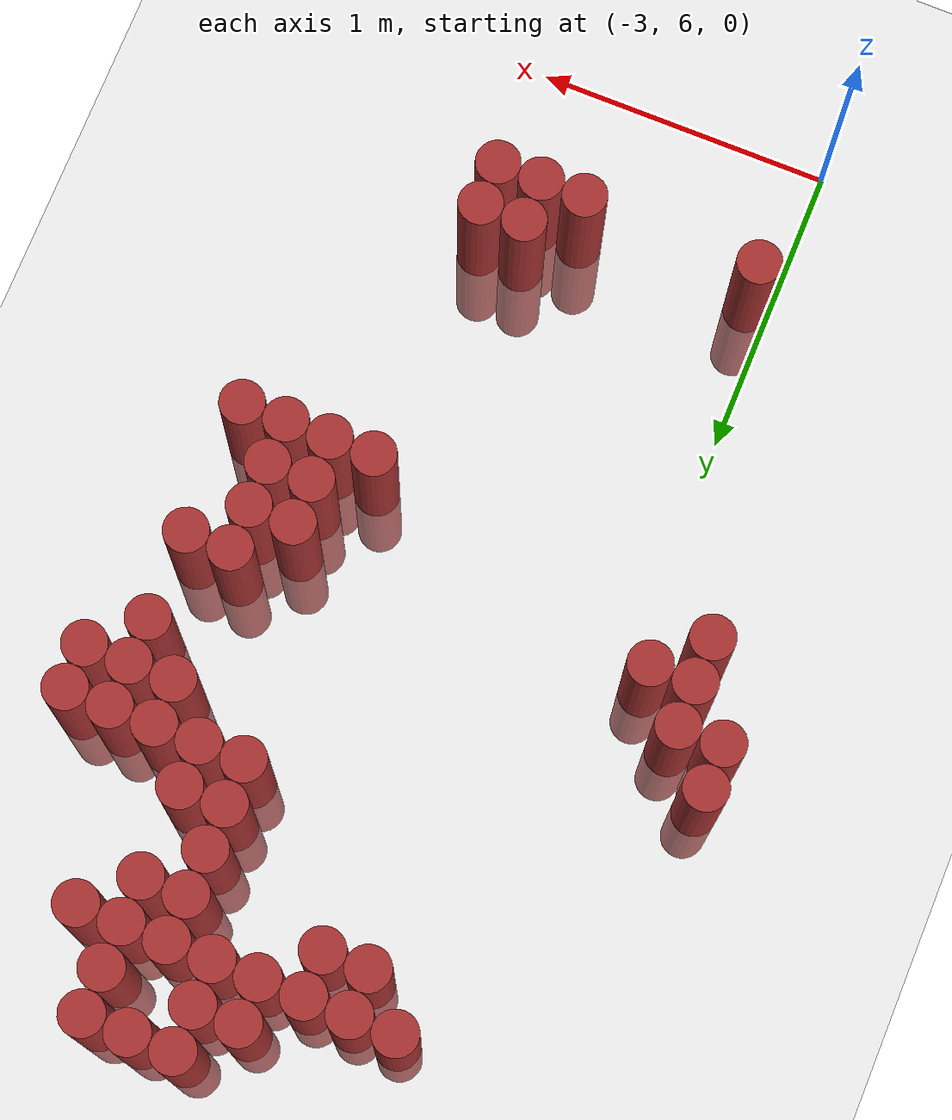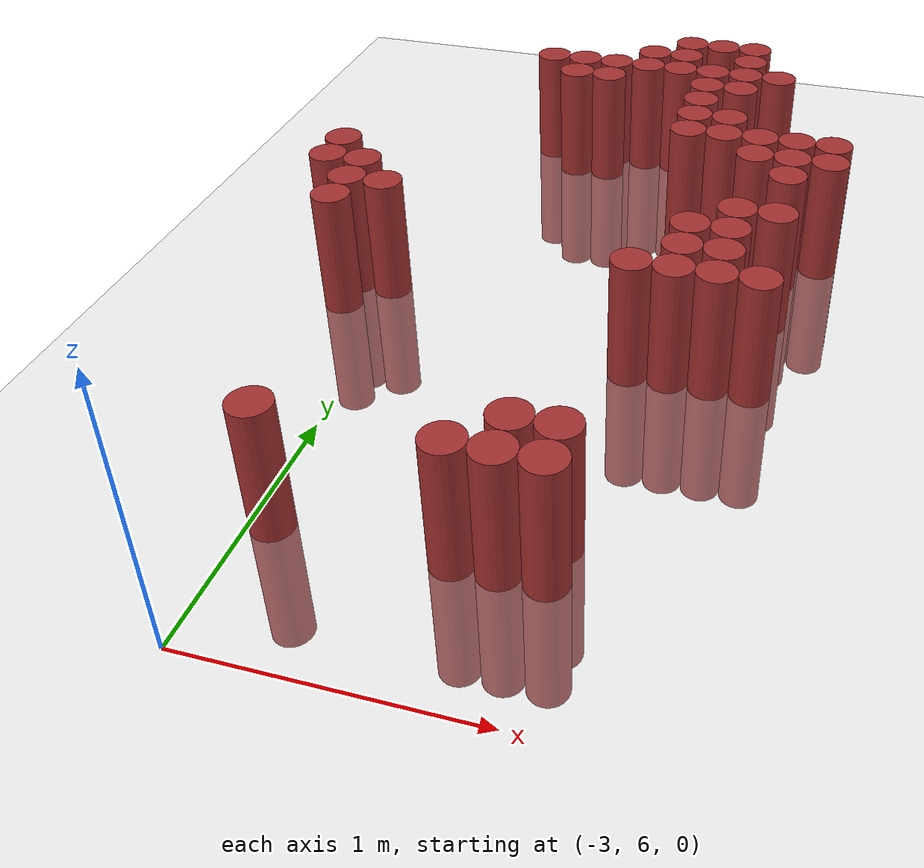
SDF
<sdf version="1.6">
 <world name="default">
  <model name="ground_plane">
   <static>1</static>
   <link name="link">
    <collision name="collision">
     <geometry><plane><normal>0 0 1</normal><size>100 100</size></plane></geometry>
     <surface><friction><ode><mu>100</mu><mu2>50</mu2></ode></friction></surface>
    </collision>
    <visual name="visual">
     <cast_shadows>0</cast_shadows>
     <geometry><plane><normal>0 0 1</normal><size>100 100</size></plane></geometry>
     <material>
      <script><uri>file://media/materials/scripts/gazebo.material</uri><name>Gazebo/Grey</name></script>
     </material>
    </visual>
   </link>
  </model>
  <model name="unit_cylinder_165">
   <static>1</static>
   <pose>-3.375000 8.025000 0.000000 0.000000 0.000000 0.000000</pose>
   <link name="link">
    <inertial>
     <mass>1</mass>
     <inertia><ixx>0.145833</ixx><ixy>0</ixy><ixz>0</ixz><iyy>0.145833</iyy><iyz>0</iyz><izz>0.125</izz></inertia>
    </inertial>
    <collision name="collision">
     <geometry><cylinder><radius>0.075000</radius><length>1</length></cylinder></geometry>
    </collision>
    <visual name="visual">
     <geometry><cylinder><radius>0.075000</radius><length>1</length></cylinder></geometry>
     <material>
      <ambient>0.648000 0.192000 0.192000 1</ambient>
      <diffuse>0.648000 0.192000 0.192000 1</diffuse>
     </material>
     <material>
      <script><name>Gazebo/Grey</name><uri>file://media/materials/scripts/gazebo.material</uri></script>
     </material>
    </visual>
   </link>
  </model>
  <model name="unit_cylinder_166">
   <static>1</static>
   <pose>-3.375000 8.175000 0.000000 0.000000 0.000000 0.000000</pose>
   <link name="link">
    <inertial>
     <mass>1</mass>
     <inertia><ixx>0.145833</ixx><ixy>0</ixy><ixz>0</ixz><iyy>0.145833</iyy><iyz>0</iyz><izz>0.125</izz></inertia>
    </inertial>
    <collision name="collision">
     <geometry><cylinder><radius>0.075000</radius><length>1</length></cylinder></geometry>
    </collision>
    <visual name="visual">
     <geometry><cylinder><radius>0.075000</radius><length>1</length></cylinder></geometry>
     <material>
      <ambient>0.648000 0.192000 0.192000 1</ambient>
      <diffuse>0.648000 0.192000 0.192000 1</diffuse>
     </material>
     <material>
      <script><name>Gazebo/Grey</name><uri>file://media/materials/scripts/gazebo.material</uri></script>
     </material>
    </visual>
   </link>
  </model>
  <model name="unit_cylinder_168">
   <static>1</static>
   <pose>-3.225000 7.725000 0.000000 0.000000 0.000000 0.000000</pose>
   <link name="link">
    <inertial>
     <mass>1</mass>
     <inertia><ixx>0.145833</ixx><ixy>0</ixy><ixz>0</ixz><iyy>0.145833</iyy><iyz>0</iyz><izz>0.125</izz></inertia>
    </inertial>
    <collision name="collision">
     <geometry><cylinder><radius>0.075000</radius><length>1</length></cylinder></geometry>
    </collision>
    <visual name="visual">
     <geometry><cylinder><radius>0.075000</radius><length>1</length></cylinder></geometry>
     <material>
      <ambient>0.648000 0.192000 0.192000 1</ambient>
      <diffuse>0.648000 0.192000 0.192000 1</diffuse>
     </material>
     <material>
      <script><name>Gazebo/Grey</name><uri>file://media/materials/scripts/gazebo.material</uri></script>
     </material>
    </visual>
   </link>
  </model>
  <model name="unit_cylinder_169">
   <static>1</static>
   <pose>-3.225000 7.875000 0.000000 0.000000 0.000000 0.000000</pose>
   <link name="link">
    <inertial>
     <mass>1</mass>
     <inertia><ixx>0.145833</ixx><ixy>0</ixy><ixz>0</ixz><iyy>0.145833</iyy><iyz>0</iyz><izz>0.125</izz></inertia>
    </inertial>
    <collision name="collision">
     <geometry><cylinder><radius>0.075000</radius><length>1</length></cylinder></geometry>
    </collision>
    <visual name="visual">
     <geometry><cylinder><radius>0.075000</radius><length>1</length></cylinder></geometry>
     <material>
      <ambient>0.648000 0.192000 0.192000 1</ambient>
      <diffuse>0.648000 0.192000 0.192000 1</diffuse>
     </material>
     <material>
      <script><name>Gazebo/Grey</name><uri>file://media/materials/scripts/gazebo.material</uri></script>
     </material>
    </visual>
   </link>
  </model>
  <model name="unit_cylinder_170">
   <static>1</static>
   <pose>-3.225000 8.025000 0.000000 0.000000 0.000000 0.000000</pose>
   <link name="link">
    <inertial>
     <mass>1</mass>
     <inertia><ixx>0.145833</ixx><ixy>0</ixy><ixz>0</ixz><iyy>0.145833</iyy><iyz>0</iyz><izz>0.125</izz></inertia>
    </inertial>
    <collision name="collision">
     <geometry><cylinder><radius>0.075000</radius><length>1</length></cylinder></geometry>
    </collision>
    <visual name="visual">
     <geometry><cylinder><radius>0.075000</radius><length>1</length></cylinder></geometry>
     <material>
      <ambient>0.648000 0.192000 0.192000 1</ambient>
      <diffuse>0.648000 0.192000 0.192000 1</diffuse>
     </material>
     <material>
      <script><name>Gazebo/Grey</name><uri>file://media/materials/scripts/gazebo.material</uri></script>
     </material>
    </visual>
   </link>
  </model>
  <model name="unit_cylinder_173">
   <static>1</static>
   <pose>-3.075000 7.875000 0.000000 0.000000 0.000000 0.000000</pose>
   <link name="link">
    <inertial>
     <mass>1</mass>
     <inertia><ixx>0.145833</ixx><ixy>0</ixy><ixz>0</ixz><iyy>0.145833</iyy><iyz>0</iyz><izz>0.125</izz></inertia>
    </inertial>
    <collision name="collision">
     <geometry><cylinder><radius>0.075000</radius><length>1</length></cylinder></geometry>
    </collision>
    <visual name="visual">
     <geometry><cylinder><radius>0.075000</radius><length>1</length></cylinder></geometry>
     <material>
      <ambient>0.648000 0.192000 0.192000 1</ambient>
      <diffuse>0.648000 0.192000 0.192000 1</diffuse>
     </material>
     <material>
      <script><name>Gazebo/Grey</name><uri>file://media/materials/scripts/gazebo.material</uri></script>
     </material>
    </visual>
   </link>
  </model>
  <model name="unit_cylinder_176">
   <static>1</static>
   <pose>-2.925000 6.525000 0.000000 0.000000 0.000000 0.000000</pose>
   <link name="link">
    <inertial>
     <mass>1</mass>
     <inertia><ixx>0.145833</ixx><ixy>0</ixy><ixz>0</ixz><iyy>0.145833</iyy><iyz>0</iyz><izz>0.125</izz></inertia>
    </inertial>
    <collision name="collision">
     <geometry><cylinder><radius>0.075000</radius><length>1</length></cylinder></geometry>
    </collision>
    <visual name="visual">
     <geometry><cylinder><radius>0.075000</radius><length>1</length></cylinder></geometry>
     <material>
      <ambient>0.648000 0.192000 0.192000 1</ambient>
      <diffuse>0.648000 0.192000 0.192000 1</diffuse>
     </material>
     <material>
      <script><name>Gazebo/Grey</name><uri>file://media/materials/scripts/gazebo.material</uri></script>
     </material>
    </visual>
   </link>
  </model>
  <model name="unit_cylinder_180">
   <static>1</static>
   <pose>-2.775000 9.225000 0.000000 0.000000 0.000000 0.000000</pose>
   <link name="link">
    <inertial>
     <mass>1</mass>
     <inertia><ixx>0.145833</ixx><ixy>0</ixy><ixz>0</ixz><iyy>0.145833</iyy><iyz>0</iyz><izz>0.125</izz></inertia>
    </inertial>
    <collision name="collision">
     <geometry><cylinder><radius>0.075000</radius><length>1</length></cylinder></geometry>
    </collision>
    <visual name="visual">
     <geometry><cylinder><radius>0.075000</radius><length>1</length></cylinder></geometry>
     <material>
      <ambient>0.648000 0.192000 0.192000 1</ambient>
      <diffuse>0.648000 0.192000 0.192000 1</diffuse>
     </material>
     <material>
      <script><name>Gazebo/Grey</name><uri>file://media/materials/scripts/gazebo.material</uri></script>
     </material>
    </visual>
   </link>
  </model>
  <model name="unit_cylinder_183">
   <static>1</static>
   <pose>-2.625000 9.075000 0.000000 0.000000 0.000000 0.000000</pose>
   <link name="link">
    <inertial>
     <mass>1</mass>
     <inertia><ixx>0.145833</ixx><ixy>0</ixy><ixz>0</ixz><iyy>0.145833</iyy><iyz>0</iyz><izz>0.125</izz></inertia>
    </inertial>
    <collision name="collision">
     <geometry><cylinder><radius>0.075000</radius><length>1</length></cylinder></geometry>
    </collision>
    <visual name="visual">
     <geometry><cylinder><radius>0.075000</radius><length>1</length></cylinder></geometry>
     <material>
      <ambient>0.648000 0.192000 0.192000 1</ambient>
      <diffuse>0.648000 0.192000 0.192000 1</diffuse>
     </material>
     <material>
      <script><name>Gazebo/Grey</name><uri>file://media/materials/scripts/gazebo.material</uri></script>
     </material>
    </visual>
   </link>
  </model>
  <model name="unit_cylinder_184">
   <static>1</static>
   <pose>-2.625000 9.225000 0.000000 0.000000 0.000000 0.000000</pose>
   <link name="link">
    <inertial>
     <mass>1</mass>
     <inertia><ixx>0.145833</ixx><ixy>0</ixy><ixz>0</ixz><iyy>0.145833</iyy><iyz>0</iyz><izz>0.125</izz></inertia>
    </inertial>
    <collision name="collision">
     <geometry><cylinder><radius>0.075000</radius><length>1</length></cylinder></geometry>
    </collision>
    <visual name="visual">
     <geometry><cylinder><radius>0.075000</radius><length>1</length></cylinder></geometry>
     <material>
      <ambient>0.648000 0.192000 0.192000 1</ambient>
      <diffuse>0.648000 0.192000 0.192000 1</diffuse>
     </material>
     <material>
      <script><name>Gazebo/Grey</name><uri>file://media/materials/scripts/gazebo.material</uri></script>
     </material>
    </visual>
   </link>
  </model>
  <model name="unit_cylinder_186">
   <static>1</static>
   <pose>-2.475000 9.075000 0.000000 0.000000 0.000000 0.000000</pose>
   <link name="link">
    <inertial>
     <mass>1</mass>
     <inertia><ixx>0.145833</ixx><ixy>0</ixy><ixz>0</ixz><iyy>0.145833</iyy><iyz>0</iyz><izz>0.125</izz></inertia>
    </inertial>
    <collision name="collision">
     <geometry><cylinder><radius>0.075000</radius><length>1</length></cylinder></geometry>
    </collision>
    <visual name="visual">
     <geometry><cylinder><radius>0.075000</radius><length>1</length></cylinder></geometry>
     <material>
      <ambient>0.648000 0.192000 0.192000 1</ambient>
      <diffuse>0.648000 0.192000 0.192000 1</diffuse>
     </material>
     <material>
      <script><name>Gazebo/Grey</name><uri>file://media/materials/scripts/gazebo.material</uri></script>
     </material>
    </visual>
   </link>
  </model>
  <model name="unit_cylinder_187">
   <static>1</static>
   <pose>-2.475000 9.225000 0.000000 0.000000 0.000000 0.000000</pose>
   <link name="link">
    <inertial>
     <mass>1</mass>
     <inertia><ixx>0.145833</ixx><ixy>0</ixy><ixz>0</ixz><iyy>0.145833</iyy><iyz>0</iyz><izz>0.125</izz></inertia>
    </inertial>
    <collision name="collision">
     <geometry><cylinder><radius>0.075000</radius><length>1</length></cylinder></geometry>
    </collision>
    <visual name="visual">
     <geometry><cylinder><radius>0.075000</radius><length>1</length></cylinder></geometry>
     <material>
      <ambient>0.648000 0.192000 0.192000 1</ambient>
      <diffuse>0.648000 0.192000 0.192000 1</diffuse>
     </material>
     <material>
      <script><name>Gazebo/Grey</name><uri>file://media/materials/scripts/gazebo.material</uri></script>
     </material>
    </visual>
   </link>
  </model>
  <model name="unit_cylinder_191">
   <static>1</static>
   <pose>-2.325000 6.525000 0.000000 0.000000 0.000000 0.000000</pose>
   <link name="link">
    <inertial>
     <mass>1</mass>
     <inertia><ixx>0.145833</ixx><ixy>0</ixy><ixz>0</ixz><iyy>0.145833</iyy><iyz>0</iyz><izz>0.125</izz></inertia>
    </inertial>
    <collision name="collision">
     <geometry><cylinder><radius>0.075000</radius><length>1</length></cylinder></geometry>
    </collision>
    <visual name="visual">
     <geometry><cylinder><radius>0.075000</radius><length>1</length></cylinder></geometry>
     <material>
      <ambient>0.648000 0.192000 0.192000 1</ambient>
      <diffuse>0.648000 0.192000 0.192000 1</diffuse>
     </material>
     <material>
      <script><name>Gazebo/Grey</name><uri>file://media/materials/scripts/gazebo.material</uri></script>
     </material>
    </visual>
   </link>
  </model>
  <model name="unit_cylinder_192">
   <static>1</static>
   <pose>-2.325000 9.225000 0.000000 0.000000 0.000000 0.000000</pose>
   <link name="link">
    <inertial>
     <mass>1</mass>
     <inertia><ixx>0.145833</ixx><ixy>0</ixy><ixz>0</ixz><iyy>0.145833</iyy><iyz>0</iyz><izz>0.125</izz></inertia>
    </inertial>
    <collision name="collision">
     <geometry><cylinder><radius>0.075000</radius><length>1</length></cylinder></geometry>
    </collision>
    <visual name="visual">
     <geometry><cylinder><radius>0.075000</radius><length>1</length></cylinder></geometry>
     <material>
      <ambient>0.648000 0.192000 0.192000 1</ambient>
      <diffuse>0.648000 0.192000 0.192000 1</diffuse>
     </material>
     <material>
      <script><name>Gazebo/Grey</name><uri>file://media/materials/scripts/gazebo.material</uri></script>
     </material>
    </visual>
   </link>
  </model>
  <model name="unit_cylinder_193">
   <static>1</static>
   <pose>-2.325000 9.375000 0.000000 0.000000 0.000000 0.000000</pose>
   <link name="link">
    <inertial>
     <mass>1</mass>
     <inertia><ixx>0.145833</ixx><ixy>0</ixy><ixz>0</ixz><iyy>0.145833</iyy><iyz>0</iyz><izz>0.125</izz></inertia>
    </inertial>
    <collision name="collision">
     <geometry><cylinder><radius>0.075000</radius><length>1</length></cylinder></geometry>
    </collision>
    <visual name="visual">
     <geometry><cylinder><radius>0.075000</radius><length>1</length></cylinder></geometry>
     <material>
      <ambient>0.648000 0.192000 0.192000 1</ambient>
      <diffuse>0.648000 0.192000 0.192000 1</diffuse>
     </material>
     <material>
      <script><name>Gazebo/Grey</name><uri>file://media/materials/scripts/gazebo.material</uri></script>
     </material>
    </visual>
   </link>
  </model>
  <model name="unit_cylinder_199">
   <static>1</static>
   <pose>-2.175000 6.525000 0.000000 0.000000 0.000000 0.000000</pose>
   <link name="link">
    <inertial>
     <mass>1</mass>
     <inertia><ixx>0.145833</ixx><ixy>0</ixy><ixz>0</ixz><iyy>0.145833</iyy><iyz>0</iyz><izz>0.125</izz></inertia>
    </inertial>
    <collision name="collision">
     <geometry><cylinder><radius>0.075000</radius><length>1</length></cylinder></geometry>
    </collision>
    <visual name="visual">
     <geometry><cylinder><radius>0.075000</radius><length>1</length></cylinder></geometry>
     <material>
      <ambient>0.648000 0.192000 0.192000 1</ambient>
      <diffuse>0.648000 0.192000 0.192000 1</diffuse>
     </material>
     <material>
      <script><name>Gazebo/Grey</name><uri>file://media/materials/scripts/gazebo.material</uri></script>
     </material>
    </visual>
   </link>
  </model>
  <model name="unit_cylinder_200">
   <static>1</static>
   <pose>-2.175000 6.675000 0.000000 0.000000 0.000000 0.000000</pose>
   <link name="link">
    <inertial>
     <mass>1</mass>
     <inertia><ixx>0.145833</ixx><ixy>0</ixy><ixz>0</ixz><iyy>0.145833</iyy><iyz>0</iyz><izz>0.125</izz></inertia>
    </inertial>
    <collision name="collision">
     <geometry><cylinder><radius>0.075000</radius><length>1</length></cylinder></geometry>
    </collision>
    <visual name="visual">
     <geometry><cylinder><radius>0.075000</radius><length>1</length></cylinder></geometry>
     <material>
      <ambient>0.648000 0.192000 0.192000 1</ambient>
      <diffuse>0.648000 0.192000 0.192000 1</diffuse>
     </material>
     <material>
      <script><name>Gazebo/Grey</name><uri>file://media/materials/scripts/gazebo.material</uri></script>
     </material>
    </visual>
   </link>
  </model>
  <model name="unit_cylinder_201">
   <static>1</static>
   <pose>-2.175000 9.225000 0.000000 0.000000 0.000000 0.000000</pose>
   <link name="link">
    <inertial>
     <mass>1</mass>
     <inertia><ixx>0.145833</ixx><ixy>0</ixy><ixz>0</ixz><iyy>0.145833</iyy><iyz>0</iyz><izz>0.125</izz></inertia>
    </inertial>
    <collision name="collision">
     <geometry><cylinder><radius>0.075000</radius><length>1</length></cylinder></geometry>
    </collision>
    <visual name="visual">
     <geometry><cylinder><radius>0.075000</radius><length>1</length></cylinder></geometry>
     <material>
      <ambient>0.648000 0.192000 0.192000 1</ambient>
      <diffuse>0.648000 0.192000 0.192000 1</diffuse>
     </material>
     <material>
      <script><name>Gazebo/Grey</name><uri>file://media/materials/scripts/gazebo.material</uri></script>
     </material>
    </visual>
   </link>
  </model>
  <model name="unit_cylinder_202">
   <static>1</static>
   <pose>-2.175000 9.375000 0.000000 0.000000 0.000000 0.000000</pose>
   <link name="link">
    <inertial>
     <mass>1</mass>
     <inertia><ixx>0.145833</ixx><ixy>0</ixy><ixz>0</ixz><iyy>0.145833</iyy><iyz>0</iyz><izz>0.125</izz></inertia>
    </inertial>
    <collision name="collision">
     <geometry><cylinder><radius>0.075000</radius><length>1</length></cylinder></geometry>
    </collision>
    <visual name="visual">
     <geometry><cylinder><radius>0.075000</radius><length>1</length></cylinder></geometry>
     <material>
      <ambient>0.648000 0.192000 0.192000 1</ambient>
      <diffuse>0.648000 0.192000 0.192000 1</diffuse>
     </material>
     <material>
      <script><name>Gazebo/Grey</name><uri>file://media/materials/scripts/gazebo.material</uri></script>
     </material>
    </visual>
   </link>
  </model>
  <model name="unit_cylinder_203">
   <static>1</static>
   <pose>-2.175000 9.525000 0.000000 0.000000 0.000000 0.000000</pose>
   <link name="link">
    <inertial>
     <mass>1</mass>
     <inertia><ixx>0.145833</ixx><ixy>0</ixy><ixz>0</ixz><iyy>0.145833</iyy><iyz>0</iyz><izz>0.125</izz></inertia>
    </inertial>
    <collision name="collision">
     <geometry><cylinder><radius>0.075000</radius><length>1</length></cylinder></geometry>
    </collision>
    <visual name="visual">
     <geometry><cylinder><radius>0.075000</radius><length>1</length></cylinder></geometry>
     <material>
      <ambient>0.648000 0.192000 0.192000 1</ambient>
      <diffuse>0.648000 0.192000 0.192000 1</diffuse>
     </material>
     <material>
      <script><name>Gazebo/Grey</name><uri>file://media/materials/scripts/gazebo.material</uri></script>
     </material>
    </visual>
   </link>
  </model>
  <model name="unit_cylinder_207">
   <static>1</static>
   <pose>-2.025000 6.525000 0.000000 0.000000 0.000000 0.000000</pose>
   <link name="link">
    <inertial>
     <mass>1</mass>
     <inertia><ixx>0.145833</ixx><ixy>0</ixy><ixz>0</ixz><iyy>0.145833</iyy><iyz>0</iyz><izz>0.125</izz></inertia>
    </inertial>
    <collision name="collision">
     <geometry><cylinder><radius>0.075000</radius><length>1</length></cylinder></geometry>
    </collision>
    <visual name="visual">
     <geometry><cylinder><radius>0.075000</radius><length>1</length></cylinder></geometry>
     <material>
      <ambient>0.648000 0.192000 0.192000 1</ambient>
      <diffuse>0.648000 0.192000 0.192000 1</diffuse>
     </material>
     <material>
      <script><name>Gazebo/Grey</name><uri>file://media/materials/scripts/gazebo.material</uri></script>
     </material>
    </visual>
   </link>
  </model>
  <model name="unit_cylinder_208">
   <static>1</static>
   <pose>-2.025000 6.675000 0.000000 0.000000 0.000000 0.000000</pose>
   <link name="link">
    <inertial>
     <mass>1</mass>
     <inertia><ixx>0.145833</ixx><ixy>0</ixy><ixz>0</ixz><iyy>0.145833</iyy><iyz>0</iyz><izz>0.125</izz></inertia>
    </inertial>
    <collision name="collision">
     <geometry><cylinder><radius>0.075000</radius><length>1</length></cylinder></geometry>
    </collision>
    <visual name="visual">
     <geometry><cylinder><radius>0.075000</radius><length>1</length></cylinder></geometry>
     <material>
      <ambient>0.648000 0.192000 0.192000 1</ambient>
      <diffuse>0.648000 0.192000 0.192000 1</diffuse>
     </material>
     <material>
      <script><name>Gazebo/Grey</name><uri>file://media/materials/scripts/gazebo.material</uri></script>
     </material>
    </visual>
   </link>
  </model>
  <model name="unit_cylinder_209">
   <static>1</static>
   <pose>-2.025000 7.575000 0.000000 0.000000 0.000000 0.000000</pose>
   <link name="link">
    <inertial>
     <mass>1</mass>
     <inertia><ixx>0.145833</ixx><ixy>0</ixy><ixz>0</ixz><iyy>0.145833</iyy><iyz>0</iyz><izz>0.125</izz></inertia>
    </inertial>
    <collision name="collision">
     <geometry><cylinder><radius>0.075000</radius><length>1</length></cylinder></geometry>
    </collision>
    <visual name="visual">
     <geometry><cylinder><radius>0.075000</radius><length>1</length></cylinder></geometry>
     <material>
      <ambient>0.648000 0.192000 0.192000 1</ambient>
      <diffuse>0.648000 0.192000 0.192000 1</diffuse>
     </material>
     <material>
      <script><name>Gazebo/Grey</name><uri>file://media/materials/scripts/gazebo.material</uri></script>
     </material>
    </visual>
   </link>
  </model>
  <model name="unit_cylinder_210">
   <static>1</static>
   <pose>-2.025000 8.625000 0.000000 0.000000 0.000000 0.000000</pose>
   <link name="link">
    <inertial>
     <mass>1</mass>
     <inertia><ixx>0.145833</ixx><ixy>0</ixy><ixz>0</ixz><iyy>0.145833</iyy><iyz>0</iyz><izz>0.125</izz></inertia>
    </inertial>
    <collision name="collision">
     <geometry><cylinder><radius>0.075000</radius><length>1</length></cylinder></geometry>
    </collision>
    <visual name="visual">
     <geometry><cylinder><radius>0.075000</radius><length>1</length></cylinder></geometry>
     <material>
      <ambient>0.648000 0.192000 0.192000 1</ambient>
      <diffuse>0.648000 0.192000 0.192000 1</diffuse>
     </material>
     <material>
      <script><name>Gazebo/Grey</name><uri>file://media/materials/scripts/gazebo.material</uri></script>
     </material>
    </visual>
   </link>
  </model>
  <model name="unit_cylinder_211">
   <static>1</static>
   <pose>-2.025000 8.775000 0.000000 0.000000 0.000000 0.000000</pose>
   <link name="link">
    <inertial>
     <mass>1</mass>
     <inertia><ixx>0.145833</ixx><ixy>0</ixy><ixz>0</ixz><iyy>0.145833</iyy><iyz>0</iyz><izz>0.125</izz></inertia>
    </inertial>
    <collision name="collision">
     <geometry><cylinder><radius>0.075000</radius><length>1</length></cylinder></geometry>
    </collision>
    <visual name="visual">
     <geometry><cylinder><radius>0.075000</radius><length>1</length></cylinder></geometry>
     <material>
      <ambient>0.648000 0.192000 0.192000 1</ambient>
      <diffuse>0.648000 0.192000 0.192000 1</diffuse>
     </material>
     <material>
      <script><name>Gazebo/Grey</name><uri>file://media/materials/scripts/gazebo.material</uri></script>
     </material>
    </visual>
   </link>
  </model>
  <model name="unit_cylinder_212">
   <static>1</static>
   <pose>-2.025000 8.925000 0.000000 0.000000 0.000000 0.000000</pose>
   <link name="link">
    <inertial>
     <mass>1</mass>
     <inertia><ixx>0.145833</ixx><ixy>0</ixy><ixz>0</ixz><iyy>0.145833</iyy><iyz>0</iyz><izz>0.125</izz></inertia>
    </inertial>
    <collision name="collision">
     <geometry><cylinder><radius>0.075000</radius><length>1</length></cylinder></geometry>
    </collision>
    <visual name="visual">
     <geometry><cylinder><radius>0.075000</radius><length>1</length></cylinder></geometry>
     <material>
      <ambient>0.648000 0.192000 0.192000 1</ambient>
      <diffuse>0.648000 0.192000 0.192000 1</diffuse>
     </material>
     <material>
      <script><name>Gazebo/Grey</name><uri>file://media/materials/scripts/gazebo.material</uri></script>
     </material>
    </visual>
   </link>
  </model>
  <model name="unit_cylinder_213">
   <static>1</static>
   <pose>-2.025000 9.075000 0.000000 0.000000 0.000000 0.000000</pose>
   <link name="link">
    <inertial>
     <mass>1</mass>
     <inertia><ixx>0.145833</ixx><ixy>0</ixy><ixz>0</ixz><iyy>0.145833</iyy><iyz>0</iyz><izz>0.125</izz></inertia>
    </inertial>
    <collision name="collision">
     <geometry><cylinder><radius>0.075000</radius><length>1</length></cylinder></geometry>
    </collision>
    <visual name="visual">
     <geometry><cylinder><radius>0.075000</radius><length>1</length></cylinder></geometry>
     <material>
      <ambient>0.648000 0.192000 0.192000 1</ambient>
      <diffuse>0.648000 0.192000 0.192000 1</diffuse>
     </material>
     <material>
      <script><name>Gazebo/Grey</name><uri>file://media/materials/scripts/gazebo.material</uri></script>
     </material>
    </visual>
   </link>
  </model>
  <model name="unit_cylinder_214">
   <static>1</static>
   <pose>-2.025000 9.225000 0.000000 0.000000 0.000000 0.000000</pose>
   <link name="link">
    <inertial>
     <mass>1</mass>
     <inertia><ixx>0.145833</ixx><ixy>0</ixy><ixz>0</ixz><iyy>0.145833</iyy><iyz>0</iyz><izz>0.125</izz></inertia>
    </inertial>
    <collision name="collision">
     <geometry><cylinder><radius>0.075000</radius><length>1</length></cylinder></geometry>
    </collision>
    <visual name="visual">
     <geometry><cylinder><radius>0.075000</radius><length>1</length></cylinder></geometry>
     <material>
      <ambient>0.648000 0.192000 0.192000 1</ambient>
      <diffuse>0.648000 0.192000 0.192000 1</diffuse>
     </material>
     <material>
      <script><name>Gazebo/Grey</name><uri>file://media/materials/scripts/gazebo.material</uri></script>
     </material>
    </visual>
   </link>
  </model>
  <model name="unit_cylinder_215">
   <static>1</static>
   <pose>-2.025000 9.525000 0.000000 0.000000 0.000000 0.000000</pose>
   <link name="link">
    <inertial>
     <mass>1</mass>
     <inertia><ixx>0.145833</ixx><ixy>0</ixy><ixz>0</ixz><iyy>0.145833</iyy><iyz>0</iyz><izz>0.125</izz></inertia>
    </inertial>
    <collision name="collision">
     <geometry><cylinder><radius>0.075000</radius><length>1</length></cylinder></geometry>
    </collision>
    <visual name="visual">
     <geometry><cylinder><radius>0.075000</radius><length>1</length></cylinder></geometry>
     <material>
      <ambient>0.648000 0.192000 0.192000 1</ambient>
      <diffuse>0.648000 0.192000 0.192000 1</diffuse>
     </material>
     <material>
      <script><name>Gazebo/Grey</name><uri>file://media/materials/scripts/gazebo.material</uri></script>
     </material>
    </visual>
   </link>
  </model>
  <model name="unit_cylinder_219">
   <static>1</static>
   <pose>-1.875000 7.575000 0.000000 0.000000 0.000000 0.000000</pose>
   <link name="link">
    <inertial>
     <mass>1</mass>
     <inertia><ixx>0.145833</ixx><ixy>0</ixy><ixz>0</ixz><iyy>0.145833</iyy><iyz>0</iyz><izz>0.125</izz></inertia>
    </inertial>
    <collision name="collision">
     <geometry><cylinder><radius>0.075000</radius><length>1</length></cylinder></geometry>
    </collision>
    <visual name="visual">
     <geometry><cylinder><radius>0.075000</radius><length>1</length></cylinder></geometry>
     <material>
      <ambient>0.648000 0.192000 0.192000 1</ambient>
      <diffuse>0.648000 0.192000 0.192000 1</diffuse>
     </material>
     <material>
      <script><name>Gazebo/Grey</name><uri>file://media/materials/scripts/gazebo.material</uri></script>
     </material>
    </visual>
   </link>
  </model>
  <model name="unit_cylinder_220">
   <static>1</static>
   <pose>-1.875000 7.725000 0.000000 0.000000 0.000000 0.000000</pose>
   <link name="link">
    <inertial>
     <mass>1</mass>
     <inertia><ixx>0.145833</ixx><ixy>0</ixy><ixz>0</ixz><iyy>0.145833</iyy><iyz>0</iyz><izz>0.125</izz></inertia>
    </inertial>
    <collision name="collision">
     <geometry><cylinder><radius>0.075000</radius><length>1</length></cylinder></geometry>
    </collision>
    <visual name="visual">
     <geometry><cylinder><radius>0.075000</radius><length>1</length></cylinder></geometry>
     <material>
      <ambient>0.648000 0.192000 0.192000 1</ambient>
      <diffuse>0.648000 0.192000 0.192000 1</diffuse>
     </material>
     <material>
      <script><name>Gazebo/Grey</name><uri>file://media/materials/scripts/gazebo.material</uri></script>
     </material>
    </visual>
   </link>
  </model>
  <model name="unit_cylinder_221">
   <static>1</static>
   <pose>-1.875000 7.875000 0.000000 0.000000 0.000000 0.000000</pose>
   <link name="link">
    <inertial>
     <mass>1</mass>
     <inertia><ixx>0.145833</ixx><ixy>0</ixy><ixz>0</ixz><iyy>0.145833</iyy><iyz>0</iyz><izz>0.125</izz></inertia>
    </inertial>
    <collision name="collision">
     <geometry><cylinder><radius>0.075000</radius><length>1</length></cylinder></geometry>
    </collision>
    <visual name="visual">
     <geometry><cylinder><radius>0.075000</radius><length>1</length></cylinder></geometry>
     <material>
      <ambient>0.648000 0.192000 0.192000 1</ambient>
      <diffuse>0.648000 0.192000 0.192000 1</diffuse>
     </material>
     <material>
      <script><name>Gazebo/Grey</name><uri>file://media/materials/scripts/gazebo.material</uri></script>
     </material>
    </visual>
   </link>
  </model>
  <model name="unit_cylinder_222">
   <static>1</static>
   <pose>-1.875000 8.625000 0.000000 0.000000 0.000000 0.000000</pose>
   <link name="link">
    <inertial>
     <mass>1</mass>
     <inertia><ixx>0.145833</ixx><ixy>0</ixy><ixz>0</ixz><iyy>0.145833</iyy><iyz>0</iyz><izz>0.125</izz></inertia>
    </inertial>
    <collision name="collision">
     <geometry><cylinder><radius>0.075000</radius><length>1</length></cylinder></geometry>
    </collision>
    <visual name="visual">
     <geometry><cylinder><radius>0.075000</radius><length>1</length></cylinder></geometry>
     <material>
      <ambient>0.648000 0.192000 0.192000 1</ambient>
      <diffuse>0.648000 0.192000 0.192000 1</diffuse>
     </material>
     <material>
      <script><name>Gazebo/Grey</name><uri>file://media/materials/scripts/gazebo.material</uri></script>
     </material>
    </visual>
   </link>
  </model>
  <model name="unit_cylinder_223">
   <static>1</static>
   <pose>-1.875000 8.775000 0.000000 0.000000 0.000000 0.000000</pose>
   <link name="link">
    <inertial>
     <mass>1</mass>
     <inertia><ixx>0.145833</ixx><ixy>0</ixy><ixz>0</ixz><iyy>0.145833</iyy><iyz>0</iyz><izz>0.125</izz></inertia>
    </inertial>
    <collision name="collision">
     <geometry><cylinder><radius>0.075000</radius><length>1</length></cylinder></geometry>
    </collision>
    <visual name="visual">
     <geometry><cylinder><radius>0.075000</radius><length>1</length></cylinder></geometry>
     <material>
      <ambient>0.648000 0.192000 0.192000 1</ambient>
      <diffuse>0.648000 0.192000 0.192000 1</diffuse>
     </material>
     <material>
      <script><name>Gazebo/Grey</name><uri>file://media/materials/scripts/gazebo.material</uri></script>
     </material>
    </visual>
   </link>
  </model>
  <model name="unit_cylinder_224">
   <static>1</static>
   <pose>-1.875000 9.075000 0.000000 0.000000 0.000000 0.000000</pose>
   <link name="link">
    <inertial>
     <mass>1</mass>
     <inertia><ixx>0.145833</ixx><ixy>0</ixy><ixz>0</ixz><iyy>0.145833</iyy><iyz>0</iyz><izz>0.125</izz></inertia>
    </inertial>
    <collision name="collision">
     <geometry><cylinder><radius>0.075000</radius><length>1</length></cylinder></geometry>
    </collision>
    <visual name="visual">
     <geometry><cylinder><radius>0.075000</radius><length>1</length></cylinder></geometry>
     <material>
      <ambient>0.648000 0.192000 0.192000 1</ambient>
      <diffuse>0.648000 0.192000 0.192000 1</diffuse>
     </material>
     <material>
      <script><name>Gazebo/Grey</name><uri>file://media/materials/scripts/gazebo.material</uri></script>
     </material>
    </visual>
   </link>
  </model>
  <model name="unit_cylinder_225">
   <static>1</static>
   <pose>-1.875000 9.225000 0.000000 0.000000 0.000000 0.000000</pose>
   <link name="link">
    <inertial>
     <mass>1</mass>
     <inertia><ixx>0.145833</ixx><ixy>0</ixy><ixz>0</ixz><iyy>0.145833</iyy><iyz>0</iyz><izz>0.125</izz></inertia>
    </inertial>
    <collision name="collision">
     <geometry><cylinder><radius>0.075000</radius><length>1</length></cylinder></geometry>
    </collision>
    <visual name="visual">
     <geometry><cylinder><radius>0.075000</radius><length>1</length></cylinder></geometry>
     <material>
      <ambient>0.648000 0.192000 0.192000 1</ambient>
      <diffuse>0.648000 0.192000 0.192000 1</diffuse>
     </material>
     <material>
      <script><name>Gazebo/Grey</name><uri>file://media/materials/scripts/gazebo.material</uri></script>
     </material>
    </visual>
   </link>
  </model>
  <model name="unit_cylinder_226">
   <static>1</static>
   <pose>-1.875000 9.375000 0.000000 0.000000 0.000000 0.000000</pose>
   <link name="link">
    <inertial>
     <mass>1</mass>
     <inertia><ixx>0.145833</ixx><ixy>0</ixy><ixz>0</ixz><iyy>0.145833</iyy><iyz>0</iyz><izz>0.125</izz></inertia>
    </inertial>
    <collision name="collision">
     <geometry><cylinder><radius>0.075000</radius><length>1</length></cylinder></geometry>
    </collision>
    <visual name="visual">
     <geometry><cylinder><radius>0.075000</radius><length>1</length></cylinder></geometry>
     <material>
      <ambient>0.648000 0.192000 0.192000 1</ambient>
      <diffuse>0.648000 0.192000 0.192000 1</diffuse>
     </material>
     <material>
      <script><name>Gazebo/Grey</name><uri>file://media/materials/scripts/gazebo.material</uri></script>
     </material>
    </visual>
   </link>
  </model>
  <model name="unit_cylinder_227">
   <static>1</static>
   <pose>-1.875000 9.525000 0.000000 0.000000 0.000000 0.000000</pose>
   <link name="link">
    <inertial>
     <mass>1</mass>
     <inertia><ixx>0.145833</ixx><ixy>0</ixy><ixz>0</ixz><iyy>0.145833</iyy><iyz>0</iyz><izz>0.125</izz></inertia>
    </inertial>
    <collision name="collision">
     <geometry><cylinder><radius>0.075000</radius><length>1</length></cylinder></geometry>
    </collision>
    <visual name="visual">
     <geometry><cylinder><radius>0.075000</radius><length>1</length></cylinder></geometry>
     <material>
      <ambient>0.648000 0.192000 0.192000 1</ambient>
      <diffuse>0.648000 0.192000 0.192000 1</diffuse>
     </material>
     <material>
      <script><name>Gazebo/Grey</name><uri>file://media/materials/scripts/gazebo.material</uri></script>
     </material>
    </visual>
   </link>
  </model>
  <model name="unit_cylinder_230">
   <static>1</static>
   <pose>-1.725000 7.575000 0.000000 0.000000 0.000000 0.000000</pose>
   <link name="link">
    <inertial>
     <mass>1</mass>
     <inertia><ixx>0.145833</ixx><ixy>0</ixy><ixz>0</ixz><iyy>0.145833</iyy><iyz>0</iyz><izz>0.125</izz></inertia>
    </inertial>
    <collision name="collision">
     <geometry><cylinder><radius>0.075000</radius><length>1</length></cylinder></geometry>
    </collision>
    <visual name="visual">
     <geometry><cylinder><radius>0.075000</radius><length>1</length></cylinder></geometry>
     <material>
      <ambient>0.648000 0.192000 0.192000 1</ambient>
      <diffuse>0.648000 0.192000 0.192000 1</diffuse>
     </material>
     <material>
      <script><name>Gazebo/Grey</name><uri>file://media/materials/scripts/gazebo.material</uri></script>
     </material>
    </visual>
   </link>
  </model>
  <model name="unit_cylinder_231">
   <static>1</static>
   <pose>-1.725000 7.725000 0.000000 0.000000 0.000000 0.000000</pose>
   <link name="link">
    <inertial>
     <mass>1</mass>
     <inertia><ixx>0.145833</ixx><ixy>0</ixy><ixz>0</ixz><iyy>0.145833</iyy><iyz>0</iyz><izz>0.125</izz></inertia>
    </inertial>
    <collision name="collision">
     <geometry><cylinder><radius>0.075000</radius><length>1</length></cylinder></geometry>
    </collision>
    <visual name="visual">
     <geometry><cylinder><radius>0.075000</radius><length>1</length></cylinder></geometry>
     <material>
      <ambient>0.648000 0.192000 0.192000 1</ambient>
      <diffuse>0.648000 0.192000 0.192000 1</diffuse>
     </material>
     <material>
      <script><name>Gazebo/Grey</name><uri>file://media/materials/scripts/gazebo.material</uri></script>
     </material>
    </visual>
   </link>
  </model>
  <model name="unit_cylinder_232">
   <static>1</static>
   <pose>-1.725000 7.875000 0.000000 0.000000 0.000000 0.000000</pose>
   <link name="link">
    <inertial>
     <mass>1</mass>
     <inertia><ixx>0.145833</ixx><ixy>0</ixy><ixz>0</ixz><iyy>0.145833</iyy><iyz>0</iyz><izz>0.125</izz></inertia>
    </inertial>
    <collision name="collision">
     <geometry><cylinder><radius>0.075000</radius><length>1</length></cylinder></geometry>
    </collision>
    <visual name="visual">
     <geometry><cylinder><radius>0.075000</radius><length>1</length></cylinder></geometry>
     <material>
      <ambient>0.648000 0.192000 0.192000 1</ambient>
      <diffuse>0.648000 0.192000 0.192000 1</diffuse>
     </material>
     <material>
      <script><name>Gazebo/Grey</name><uri>file://media/materials/scripts/gazebo.material</uri></script>
     </material>
    </visual>
   </link>
  </model>
  <model name="unit_cylinder_233">
   <static>1</static>
   <pose>-1.725000 8.025000 0.000000 0.000000 0.000000 0.000000</pose>
   <link name="link">
    <inertial>
     <mass>1</mass>
     <inertia><ixx>0.145833</ixx><ixy>0</ixy><ixz>0</ixz><iyy>0.145833</iyy><iyz>0</iyz><izz>0.125</izz></inertia>
    </inertial>
    <collision name="collision">
     <geometry><cylinder><radius>0.075000</radius><length>1</length></cylinder></geometry>
    </collision>
    <visual name="visual">
     <geometry><cylinder><radius>0.075000</radius><length>1</length></cylinder></geometry>
     <material>
      <ambient>0.648000 0.192000 0.192000 1</ambient>
      <diffuse>0.648000 0.192000 0.192000 1</diffuse>
     </material>
     <material>
      <script><name>Gazebo/Grey</name><uri>file://media/materials/scripts/gazebo.material</uri></script>
     </material>
    </visual>
   </link>
  </model>
  <model name="unit_cylinder_234">
   <static>1</static>
   <pose>-1.725000 8.475000 0.000000 0.000000 0.000000 0.000000</pose>
   <link name="link">
    <inertial>
     <mass>1</mass>
     <inertia><ixx>0.145833</ixx><ixy>0</ixy><ixz>0</ixz><iyy>0.145833</iyy><iyz>0</iyz><izz>0.125</izz></inertia>
    </inertial>
    <collision name="collision">
     <geometry><cylinder><radius>0.075000</radius><length>1</length></cylinder></geometry>
    </collision>
    <visual name="visual">
     <geometry><cylinder><radius>0.075000</radius><length>1</length></cylinder></geometry>
     <material>
      <ambient>0.648000 0.192000 0.192000 1</ambient>
      <diffuse>0.648000 0.192000 0.192000 1</diffuse>
     </material>
     <material>
      <script><name>Gazebo/Grey</name><uri>file://media/materials/scripts/gazebo.material</uri></script>
     </material>
    </visual>
   </link>
  </model>
  <model name="unit_cylinder_235">
   <static>1</static>
   <pose>-1.725000 8.625000 0.000000 0.000000 0.000000 0.000000</pose>
   <link name="link">
    <inertial>
     <mass>1</mass>
     <inertia><ixx>0.145833</ixx><ixy>0</ixy><ixz>0</ixz><iyy>0.145833</iyy><iyz>0</iyz><izz>0.125</izz></inertia>
    </inertial>
    <collision name="collision">
     <geometry><cylinder><radius>0.075000</radius><length>1</length></cylinder></geometry>
    </collision>
    <visual name="visual">
     <geometry><cylinder><radius>0.075000</radius><length>1</length></cylinder></geometry>
     <material>
      <ambient>0.648000 0.192000 0.192000 1</ambient>
      <diffuse>0.648000 0.192000 0.192000 1</diffuse>
     </material>
     <material>
      <script><name>Gazebo/Grey</name><uri>file://media/materials/scripts/gazebo.material</uri></script>
     </material>
    </visual>
   </link>
  </model>
  <model name="unit_cylinder_236">
   <static>1</static>
   <pose>-1.725000 9.225000 0.000000 0.000000 0.000000 0.000000</pose>
   <link name="link">
    <inertial>
     <mass>1</mass>
     <inertia><ixx>0.145833</ixx><ixy>0</ixy><ixz>0</ixz><iyy>0.145833</iyy><iyz>0</iyz><izz>0.125</izz></inertia>
    </inertial>
    <collision name="collision">
     <geometry><cylinder><radius>0.075000</radius><length>1</length></cylinder></geometry>
    </collision>
    <visual name="visual">
     <geometry><cylinder><radius>0.075000</radius><length>1</length></cylinder></geometry>
     <material>
      <ambient>0.648000 0.192000 0.192000 1</ambient>
      <diffuse>0.648000 0.192000 0.192000 1</diffuse>
     </material>
     <material>
      <script><name>Gazebo/Grey</name><uri>file://media/materials/scripts/gazebo.material</uri></script>
     </material>
    </visual>
   </link>
  </model>
  <model name="unit_cylinder_237">
   <static>1</static>
   <pose>-1.575000 7.575000 0.000000 0.000000 0.000000 0.000000</pose>
   <link name="link">
    <inertial>
     <mass>1</mass>
     <inertia><ixx>0.145833</ixx><ixy>0</ixy><ixz>0</ixz><iyy>0.145833</iyy><iyz>0</iyz><izz>0.125</izz></inertia>
    </inertial>
    <collision name="collision">
     <geometry><cylinder><radius>0.075000</radius><length>1</length></cylinder></geometry>
    </collision>
    <visual name="visual">
     <geometry><cylinder><radius>0.075000</radius><length>1</length></cylinder></geometry>
     <material>
      <ambient>0.648000 0.192000 0.192000 1</ambient>
      <diffuse>0.648000 0.192000 0.192000 1</diffuse>
     </material>
     <material>
      <script><name>Gazebo/Grey</name><uri>file://media/materials/scripts/gazebo.material</uri></script>
     </material>
    </visual>
   </link>
  </model>
  <model name="unit_cylinder_238">
   <static>1</static>
   <pose>-1.575000 8.025000 0.000000 0.000000 0.000000 0.000000</pose>
   <link name="link">
    <inertial>
     <mass>1</mass>
     <inertia><ixx>0.145833</ixx><ixy>0</ixy><ixz>0</ixz><iyy>0.145833</iyy><iyz>0</iyz><izz>0.125</izz></inertia>
    </inertial>
    <collision name="collision">
     <geometry><cylinder><radius>0.075000</radius><length>1</length></cylinder></geometry>
    </collision>
    <visual name="visual">
     <geometry><cylinder><radius>0.075000</radius><length>1</length></cylinder></geometry>
     <material>
      <ambient>0.648000 0.192000 0.192000 1</ambient>
      <diffuse>0.648000 0.192000 0.192000 1</diffuse>
     </material>
     <material>
      <script><name>Gazebo/Grey</name><uri>file://media/materials/scripts/gazebo.material</uri></script>
     </material>
    </visual>
   </link>
  </model>
  <model name="unit_cylinder_239">
   <static>1</static>
   <pose>-1.575000 8.325000 0.000000 0.000000 0.000000 0.000000</pose>
   <link name="link">
    <inertial>
     <mass>1</mass>
     <inertia><ixx>0.145833</ixx><ixy>0</ixy><ixz>0</ixz><iyy>0.145833</iyy><iyz>0</iyz><izz>0.125</izz></inertia>
    </inertial>
    <collision name="collision">
     <geometry><cylinder><radius>0.075000</radius><length>1</length></cylinder></geometry>
    </collision>
    <visual name="visual">
     <geometry><cylinder><radius>0.075000</radius><length>1</length></cylinder></geometry>
     <material>
      <ambient>0.648000 0.192000 0.192000 1</ambient>
      <diffuse>0.648000 0.192000 0.192000 1</diffuse>
     </material>
     <material>
      <script><name>Gazebo/Grey</name><uri>file://media/materials/scripts/gazebo.material</uri></script>
     </material>
    </visual>
   </link>
  </model>
  <model name="unit_cylinder_240">
   <static>1</static>
   <pose>-1.575000 8.475000 0.000000 0.000000 0.000000 0.000000</pose>
   <link name="link">
    <inertial>
     <mass>1</mass>
     <inertia><ixx>0.145833</ixx><ixy>0</ixy><ixz>0</ixz><iyy>0.145833</iyy><iyz>0</iyz><izz>0.125</izz></inertia>
    </inertial>
    <collision name="collision">
     <geometry><cylinder><radius>0.075000</radius><length>1</length></cylinder></geometry>
    </collision>
    <visual name="visual">
     <geometry><cylinder><radius>0.075000</radius><length>1</length></cylinder></geometry>
     <material>
      <ambient>0.648000 0.192000 0.192000 1</ambient>
      <diffuse>0.648000 0.192000 0.192000 1</diffuse>
     </material>
     <material>
      <script><name>Gazebo/Grey</name><uri>file://media/materials/scripts/gazebo.material</uri></script>
     </material>
    </visual>
   </link>
  </model>
  <model name="unit_cylinder_241">
   <static>1</static>
   <pose>-1.575000 8.625000 0.000000 0.000000 0.000000 0.000000</pose>
   <link name="link">
    <inertial>
     <mass>1</mass>
     <inertia><ixx>0.145833</ixx><ixy>0</ixy><ixz>0</ixz><iyy>0.145833</iyy><iyz>0</iyz><izz>0.125</izz></inertia>
    </inertial>
    <collision name="collision">
     <geometry><cylinder><radius>0.075000</radius><length>1</length></cylinder></geometry>
    </collision>
    <visual name="visual">
     <geometry><cylinder><radius>0.075000</radius><length>1</length></cylinder></geometry>
     <material>
      <ambient>0.648000 0.192000 0.192000 1</ambient>
      <diffuse>0.648000 0.192000 0.192000 1</diffuse>
     </material>
     <material>
      <script><name>Gazebo/Grey</name><uri>file://media/materials/scripts/gazebo.material</uri></script>
     </material>
    </visual>
   </link>
  </model>
  <model name="unit_cylinder_242">
   <static>1</static>
   <pose>-1.425000 8.475000 0.000000 0.000000 0.000000 0.000000</pose>
   <link name="link">
    <inertial>
     <mass>1</mass>
     <inertia><ixx>0.145833</ixx><ixy>0</ixy><ixz>0</ixz><iyy>0.145833</iyy><iyz>0</iyz><izz>0.125</izz></inertia>
    </inertial>
    <collision name="collision">
     <geometry><cylinder><radius>0.075000</radius><length>1</length></cylinder></geometry>
    </collision>
    <visual name="visual">
     <geometry><cylinder><radius>0.075000</radius><length>1</length></cylinder></geometry>
     <material>
      <ambient>0.648000 0.192000 0.192000 1</ambient>
      <diffuse>0.648000 0.192000 0.192000 1</diffuse>
     </material>
     <material>
      <script><name>Gazebo/Grey</name><uri>file://media/materials/scripts/gazebo.material</uri></script>
     </material>
    </visual>
   </link>
  </model>
  <model name="unit_cylinder_243">
   <static>1</static>
   <pose>-1.425000 8.625000 0.000000 0.000000 0.000000 0.000000</pose>
   <link name="link">
    <inertial>
     <mass>1</mass>
     <inertia><ixx>0.145833</ixx><ixy>0</ixy><ixz>0</ixz><iyy>0.145833</iyy><iyz>0</iyz><izz>0.125</izz></inertia>
    </inertial>
    <collision name="collision">
     <geometry><cylinder><radius>0.075000</radius><length>1</length></cylinder></geometry>
    </collision>
    <visual name="visual">
     <geometry><cylinder><radius>0.075000</radius><length>1</length></cylinder></geometry>
     <material>
      <ambient>0.648000 0.192000 0.192000 1</ambient>
      <diffuse>0.648000 0.192000 0.192000 1</diffuse>
     </material>
     <material>
      <script><name>Gazebo/Grey</name><uri>file://media/materials/scripts/gazebo.material</uri></script>
     </material>
    </visual>
   </link>
  </model>
 </world>
</sdf>
